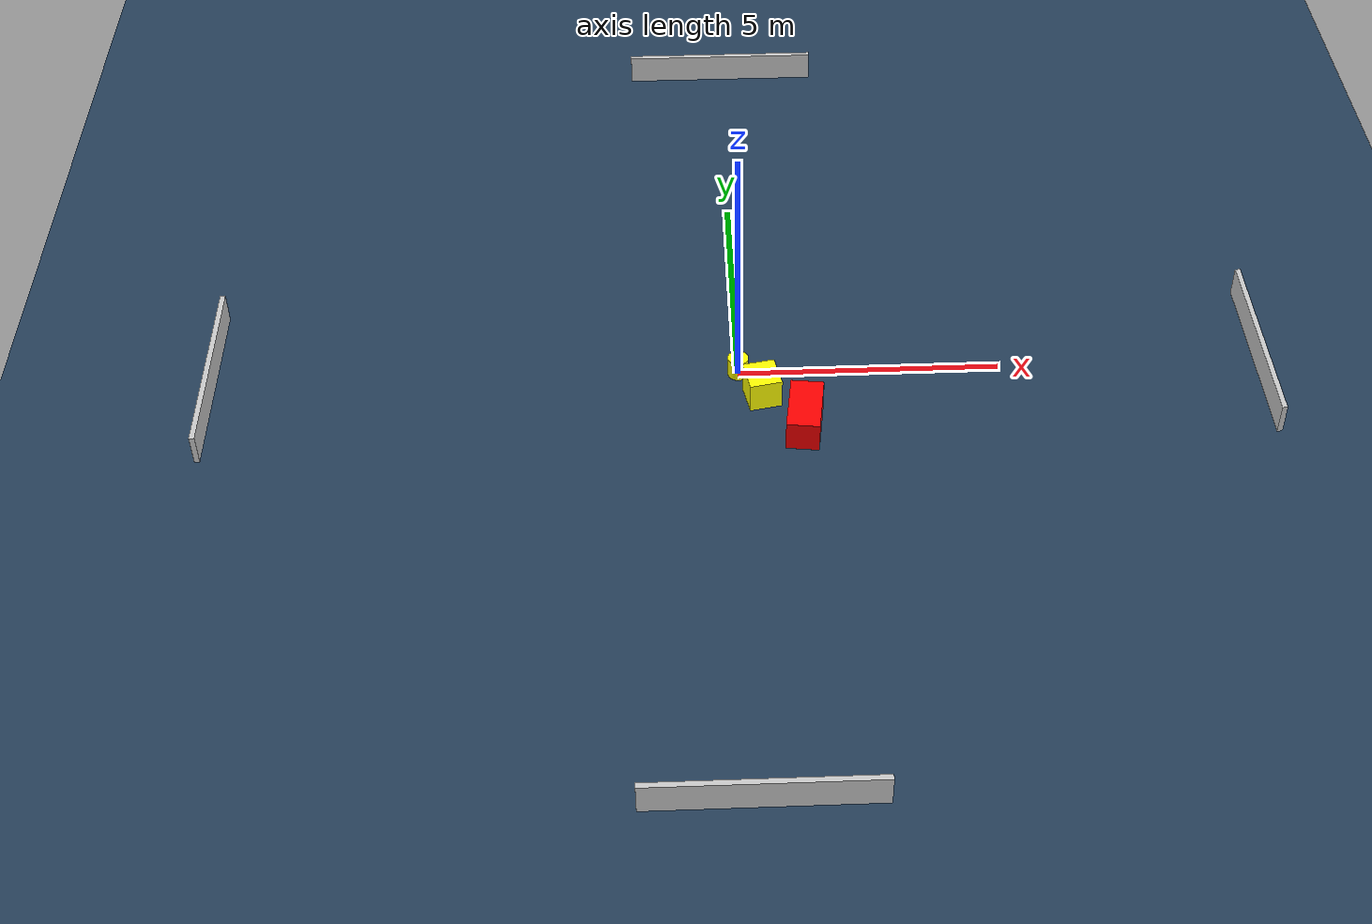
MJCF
<?xml version="1.0" ?>
<mujoco model="generated_environment">
  <option timestep="0.01" integrator="RK4" cone="elliptic"/>
  <default>
    <geom density="1"/>
  </default>
  <asset>
    <texture builtin="gradient" height="3072" name="skybox" rgb1="0.3 0.5 0.7" rgb2="0 0 0" type="skybox" width="512"/>
    <texture builtin="checker" height="300" name="groundplane" rgb1="0.2 0.3 0.4" rgb2="0.1 0.2 0.3" type="2d" width="300"/>
    <material name="groundplane" reflectance="0.2" texrepeat="5 5" texture="groundplane"/>
  </asset>
  <worldbody>
    <light dir="0 0 -1" directional="true" pos="0 0 1.5"/>
    <geom condim="3" friction="0.5 0.005 0.001" material="groundplane" name="floor" pos="0 0 0" size="0 0 0.05" type="plane"/>
    <body name="walls">
      <geom name="wall_1" condim="4" pos="-10.0 0.0 0.3" rgba="0.800000011920929 0.800000011920929 0.800000011920929 1.0" size="0.05 2.0 0.3" type="box"/>
      <geom name="wall_2" condim="4" pos="10.0 0.0 0.3" rgba="0.800000011920929 0.800000011920929 0.800000011920929 1.0" size="0.05 2.0 0.3" type="box"/>
      <geom name="wall_3" condim="4" pos="0.0 -10.0 0.3" rgba="0.800000011920929 0.800000011920929 0.800000011920929 1.0" size="2.0 0.05 0.3" type="box"/>
      <geom name="wall_4" condim="4" pos="0.0 10.0 0.3" rgba="0.800000011920929 0.800000011920929 0.800000011920929 1.0" size="2.0 0.05 0.3" type="box"/>
    </body>
    <body name="robot">
      <joint name="joint_x" type="slide" pos="0 0 0" axis="1 0 0"/>
      <joint name="joint_y" type="slide" pos="0 0 0" axis="0 1 0"/>
      <geom name="robot" type="cylinder" pos="0.0 0.0 0.2" size="0.2 0.2 0.0" mass="5.0" friction="1.0 0.005 0.0001" condim="4" rgba="1.0 1.0 0.0 1.0"/>
    </body>
    <body name="obstacle_1_movable">
      <geom name="obstacle_1_movable" condim="4" pos="0.42442705333203623 -0.6721827515700066 0.3" euler="0 0 281.34593424913686" friction="0.0 0.005 0.001" rgba="1.0 1.0 0.0 1.0" size="0.32420674197987553 0.3082501329119322 0.3" type="box" mass="0.1"/>
      <joint type="free"/>
    </body>
    <body name="obstacle_2_static">
      <geom name="obstacle_2_static" condim="4" pos="1.1795592874591252 -1.5213214570353695 0.3" euler="0 0 262.5692180645376" friction="0.0 0.005 0.001" rgba="1.0 0.0 0.0 1.0" size="0.6030102150516694 0.30985829467263787 0.3" type="box"/>
    </body>
  </worldbody>
  <actuator>
    <motor name="actuator_x" joint="joint_x" gear="1" ctrlrange="-1 1"/>
    <motor name="actuator_y" joint="joint_y" gear="1" ctrlrange="-1 1"/>
  </actuator>
</mujoco>
